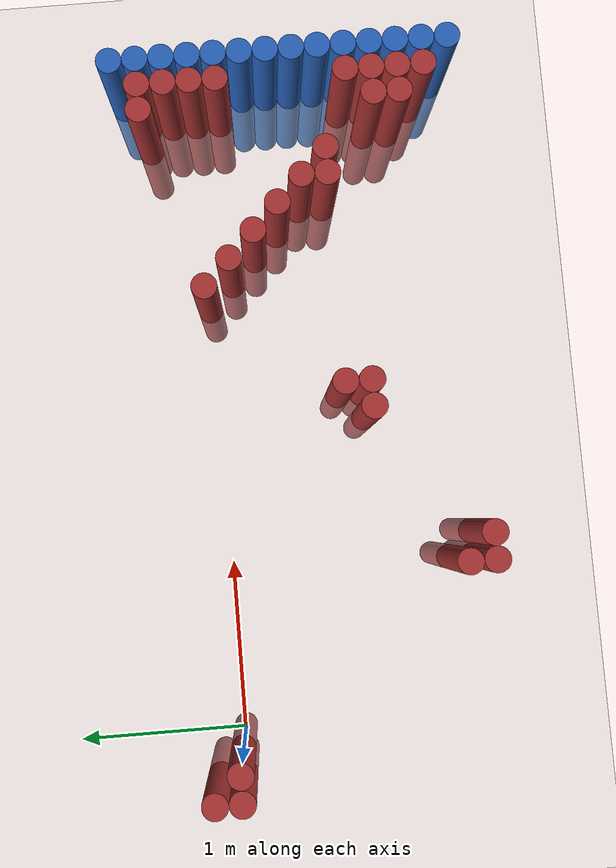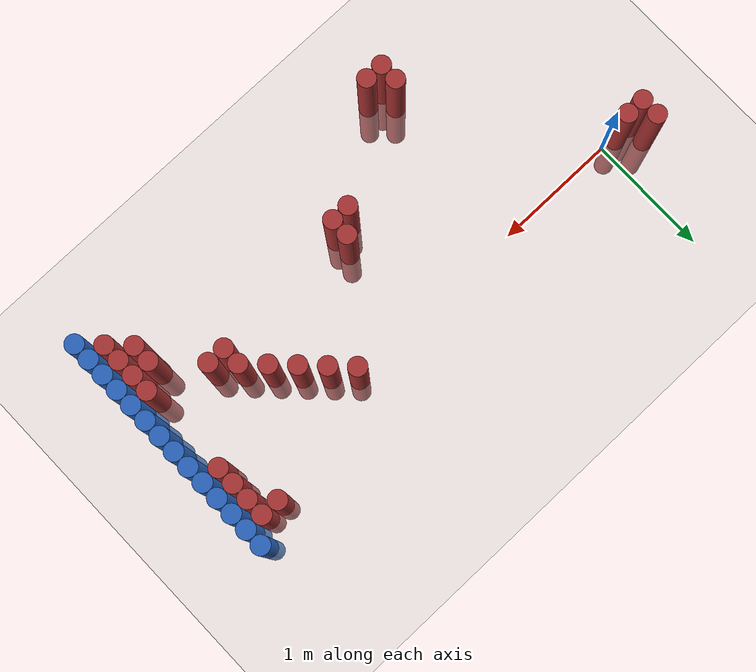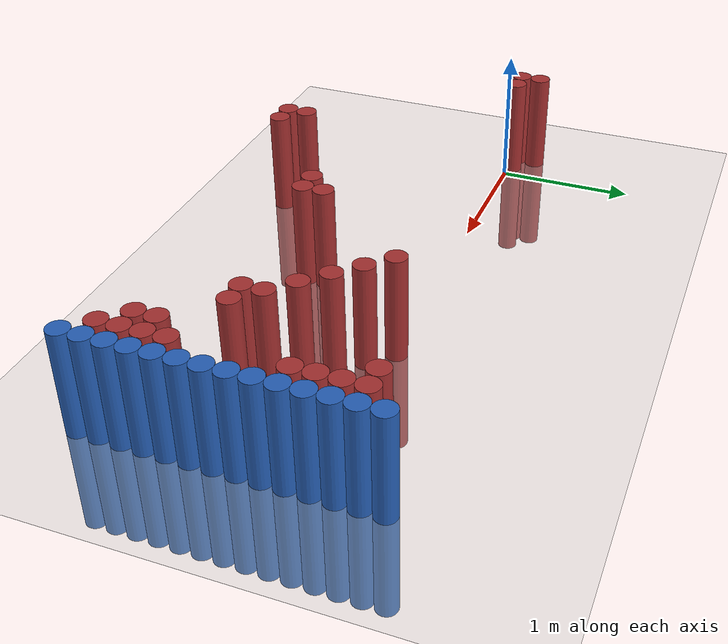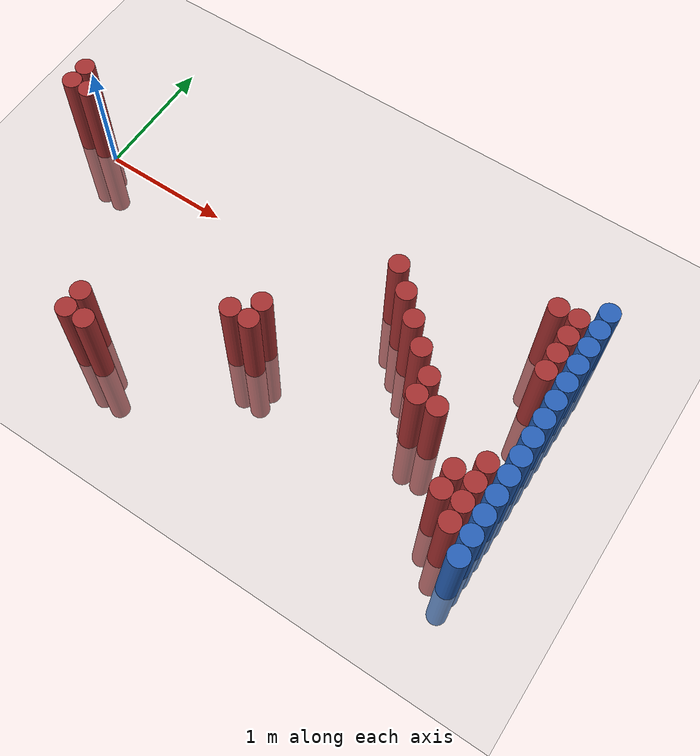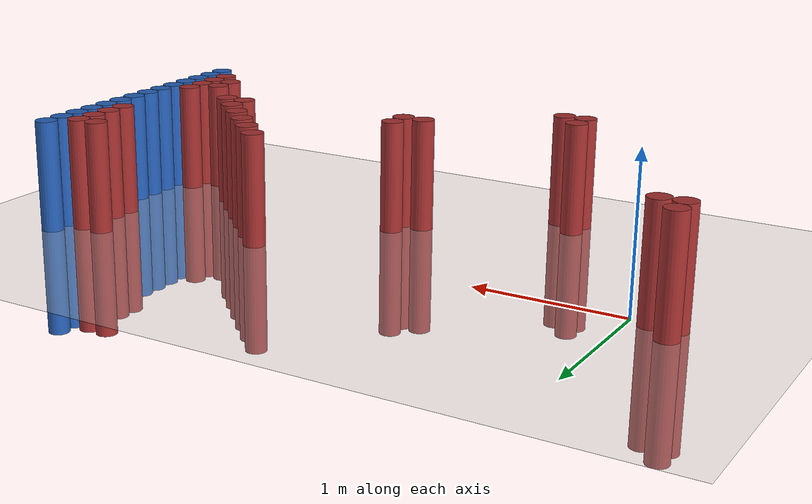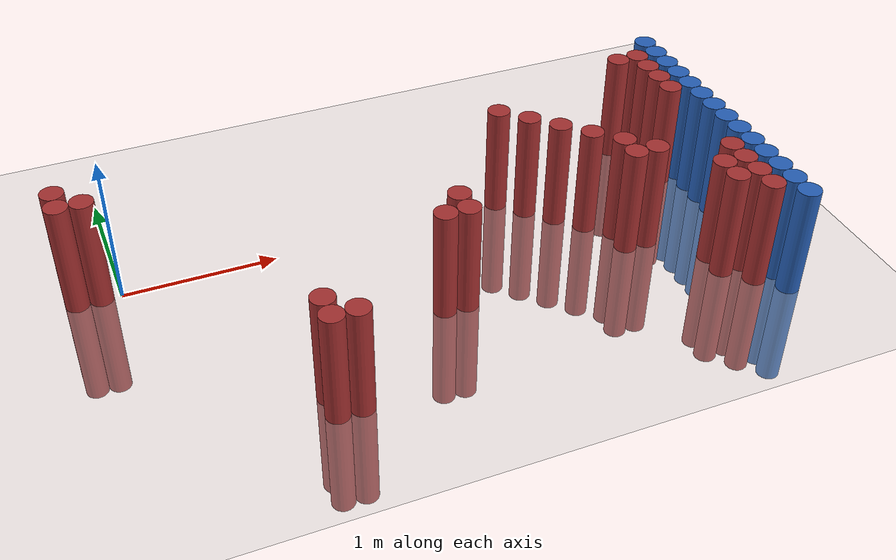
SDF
<sdf version="1.6">
 <world name="default">
  <model name="ground_plane">
   <static>1</static>
   <link name="link">
    <collision name="collision">
     <geometry><plane><normal>0 0 1</normal><size>100 100</size></plane></geometry>
     <surface><friction><ode><mu>100</mu><mu2>50</mu2></ode></friction></surface>
    </collision>
    <visual name="visual">
     <cast_shadows>0</cast_shadows>
     <geometry><plane><normal>0 0 1</normal><size>100 100</size></plane></geometry>
     <material>
      <script><uri>file://media/materials/scripts/gazebo.material</uri><name>Gazebo/Grey</name></script>
     </material>
    </visual>
   </link>
  </model>
  <model name="unit_cylinder_94">
   <static>1</static>
   <pose>3.925000 -1.475000 0.000000 0.000000 0.000000 0.000000</pose>
   <link name="link">
    <inertial>
     <mass>1</mass>
     <inertia><ixx>0.145833</ixx><ixy>0</ixy><ixz>0</ixz><iyy>0.145833</iyy><iyz>0</iyz><izz>0.125</izz></inertia>
    </inertial>
    <collision name="collision">
     <geometry><cylinder><radius>0.075000</radius><length>1.5</length></cylinder></geometry>
    </collision>
    <visual name="visual">
     <geometry><cylinder><radius>0.075000</radius><length>1.5</length></cylinder></geometry>
     <material>
      <ambient>0.152000 0.379000 0.720000 1</ambient>
      <diffuse>0.152000 0.379000 0.720000 1</diffuse>
     </material>
     <material>
      <script><name>Gazebo/Grey</name><uri>file://media/materials/scripts/gazebo.material</uri></script>
     </material>
    </visual>
   </link>
  </model>
  <model name="unit_cylinder_96">
   <static>1</static>
   <pose>3.925000 -1.325000 0.000000 0.000000 0.000000 0.000000</pose>
   <link name="link">
    <inertial>
     <mass>1</mass>
     <inertia><ixx>0.145833</ixx><ixy>0</ixy><ixz>0</ixz><iyy>0.145833</iyy><iyz>0</iyz><izz>0.125</izz></inertia>
    </inertial>
    <collision name="collision">
     <geometry><cylinder><radius>0.075000</radius><length>1.5</length></cylinder></geometry>
    </collision>
    <visual name="visual">
     <geometry><cylinder><radius>0.075000</radius><length>1.5</length></cylinder></geometry>
     <material>
      <ambient>0.152000 0.379000 0.720000 1</ambient>
      <diffuse>0.152000 0.379000 0.720000 1</diffuse>
     </material>
     <material>
      <script><name>Gazebo/Grey</name><uri>file://media/materials/scripts/gazebo.material</uri></script>
     </material>
    </visual>
   </link>
  </model>
  <model name="unit_cylinder_98">
   <static>1</static>
   <pose>3.925000 -1.175000 0.000000 0.000000 0.000000 0.000000</pose>
   <link name="link">
    <inertial>
     <mass>1</mass>
     <inertia><ixx>0.145833</ixx><ixy>0</ixy><ixz>0</ixz><iyy>0.145833</iyy><iyz>0</iyz><izz>0.125</izz></inertia>
    </inertial>
    <collision name="collision">
     <geometry><cylinder><radius>0.075000</radius><length>1.5</length></cylinder></geometry>
    </collision>
    <visual name="visual">
     <geometry><cylinder><radius>0.075000</radius><length>1.5</length></cylinder></geometry>
     <material>
      <ambient>0.152000 0.379000 0.720000 1</ambient>
      <diffuse>0.152000 0.379000 0.720000 1</diffuse>
     </material>
     <material>
      <script><name>Gazebo/Grey</name><uri>file://media/materials/scripts/gazebo.material</uri></script>
     </material>
    </visual>
   </link>
  </model>
  <model name="unit_cylinder_100">
   <static>1</static>
   <pose>3.925000 -1.025000 0.000000 0.000000 0.000000 0.000000</pose>
   <link name="link">
    <inertial>
     <mass>1</mass>
     <inertia><ixx>0.145833</ixx><ixy>0</ixy><ixz>0</ixz><iyy>0.145833</iyy><iyz>0</iyz><izz>0.125</izz></inertia>
    </inertial>
    <collision name="collision">
     <geometry><cylinder><radius>0.075000</radius><length>1.5</length></cylinder></geometry>
    </collision>
    <visual name="visual">
     <geometry><cylinder><radius>0.075000</radius><length>1.5</length></cylinder></geometry>
     <material>
      <ambient>0.152000 0.379000 0.720000 1</ambient>
      <diffuse>0.152000 0.379000 0.720000 1</diffuse>
     </material>
     <material>
      <script><name>Gazebo/Grey</name><uri>file://media/materials/scripts/gazebo.material</uri></script>
     </material>
    </visual>
   </link>
  </model>
  <model name="unit_cylinder_102">
   <static>1</static>
   <pose>3.925000 -0.875000 0.000000 0.000000 0.000000 0.000000</pose>
   <link name="link">
    <inertial>
     <mass>1</mass>
     <inertia><ixx>0.145833</ixx><ixy>0</ixy><ixz>0</ixz><iyy>0.145833</iyy><iyz>0</iyz><izz>0.125</izz></inertia>
    </inertial>
    <collision name="collision">
     <geometry><cylinder><radius>0.075000</radius><length>1.5</length></cylinder></geometry>
    </collision>
    <visual name="visual">
     <geometry><cylinder><radius>0.075000</radius><length>1.5</length></cylinder></geometry>
     <material>
      <ambient>0.152000 0.379000 0.720000 1</ambient>
      <diffuse>0.152000 0.379000 0.720000 1</diffuse>
     </material>
     <material>
      <script><name>Gazebo/Grey</name><uri>file://media/materials/scripts/gazebo.material</uri></script>
     </material>
    </visual>
   </link>
  </model>
  <model name="unit_cylinder_104">
   <static>1</static>
   <pose>3.925000 -0.725000 0.000000 0.000000 0.000000 0.000000</pose>
   <link name="link">
    <inertial>
     <mass>1</mass>
     <inertia><ixx>0.145833</ixx><ixy>0</ixy><ixz>0</ixz><iyy>0.145833</iyy><iyz>0</iyz><izz>0.125</izz></inertia>
    </inertial>
    <collision name="collision">
     <geometry><cylinder><radius>0.075000</radius><length>1.5</length></cylinder></geometry>
    </collision>
    <visual name="visual">
     <geometry><cylinder><radius>0.075000</radius><length>1.5</length></cylinder></geometry>
     <material>
      <ambient>0.152000 0.379000 0.720000 1</ambient>
      <diffuse>0.152000 0.379000 0.720000 1</diffuse>
     </material>
     <material>
      <script><name>Gazebo/Grey</name><uri>file://media/materials/scripts/gazebo.material</uri></script>
     </material>
    </visual>
   </link>
  </model>
  <model name="unit_cylinder_106">
   <static>1</static>
   <pose>3.925000 -0.575000 0.000000 0.000000 0.000000 0.000000</pose>
   <link name="link">
    <inertial>
     <mass>1</mass>
     <inertia><ixx>0.145833</ixx><ixy>0</ixy><ixz>0</ixz><iyy>0.145833</iyy><iyz>0</iyz><izz>0.125</izz></inertia>
    </inertial>
    <collision name="collision">
     <geometry><cylinder><radius>0.075000</radius><length>1.5</length></cylinder></geometry>
    </collision>
    <visual name="visual">
     <geometry><cylinder><radius>0.075000</radius><length>1.5</length></cylinder></geometry>
     <material>
      <ambient>0.152000 0.379000 0.720000 1</ambient>
      <diffuse>0.152000 0.379000 0.720000 1</diffuse>
     </material>
     <material>
      <script><name>Gazebo/Grey</name><uri>file://media/materials/scripts/gazebo.material</uri></script>
     </material>
    </visual>
   </link>
  </model>
  <model name="unit_cylinder_108">
   <static>1</static>
   <pose>3.925000 -0.425000 0.000000 0.000000 0.000000 0.000000</pose>
   <link name="link">
    <inertial>
     <mass>1</mass>
     <inertia><ixx>0.145833</ixx><ixy>0</ixy><ixz>0</ixz><iyy>0.145833</iyy><iyz>0</iyz><izz>0.125</izz></inertia>
    </inertial>
    <collision name="collision">
     <geometry><cylinder><radius>0.075000</radius><length>1.5</length></cylinder></geometry>
    </collision>
    <visual name="visual">
     <geometry><cylinder><radius>0.075000</radius><length>1.5</length></cylinder></geometry>
     <material>
      <ambient>0.152000 0.379000 0.720000 1</ambient>
      <diffuse>0.152000 0.379000 0.720000 1</diffuse>
     </material>
     <material>
      <script><name>Gazebo/Grey</name><uri>file://media/materials/scripts/gazebo.material</uri></script>
     </material>
    </visual>
   </link>
  </model>
  <model name="unit_cylinder_110">
   <static>1</static>
   <pose>3.925000 -0.275000 0.000000 0.000000 0.000000 0.000000</pose>
   <link name="link">
    <inertial>
     <mass>1</mass>
     <inertia><ixx>0.145833</ixx><ixy>0</ixy><ixz>0</ixz><iyy>0.145833</iyy><iyz>0</iyz><izz>0.125</izz></inertia>
    </inertial>
    <collision name="collision">
     <geometry><cylinder><radius>0.075000</radius><length>1.5</length></cylinder></geometry>
    </collision>
    <visual name="visual">
     <geometry><cylinder><radius>0.075000</radius><length>1.5</length></cylinder></geometry>
     <material>
      <ambient>0.152000 0.379000 0.720000 1</ambient>
      <diffuse>0.152000 0.379000 0.720000 1</diffuse>
     </material>
     <material>
      <script><name>Gazebo/Grey</name><uri>file://media/materials/scripts/gazebo.material</uri></script>
     </material>
    </visual>
   </link>
  </model>
  <model name="unit_cylinder_112">
   <static>1</static>
   <pose>3.925000 -0.125000 0.000000 0.000000 0.000000 0.000000</pose>
   <link name="link">
    <inertial>
     <mass>1</mass>
     <inertia><ixx>0.145833</ixx><ixy>0</ixy><ixz>0</ixz><iyy>0.145833</iyy><iyz>0</iyz><izz>0.125</izz></inertia>
    </inertial>
    <collision name="collision">
     <geometry><cylinder><radius>0.075000</radius><length>1.5</length></cylinder></geometry>
    </collision>
    <visual name="visual">
     <geometry><cylinder><radius>0.075000</radius><length>1.5</length></cylinder></geometry>
     <material>
      <ambient>0.152000 0.379000 0.720000 1</ambient>
      <diffuse>0.152000 0.379000 0.720000 1</diffuse>
     </material>
     <material>
      <script><name>Gazebo/Grey</name><uri>file://media/materials/scripts/gazebo.material</uri></script>
     </material>
    </visual>
   </link>
  </model>
  <model name="unit_cylinder_114">
   <static>1</static>
   <pose>3.925000 0.025000 0.000000 0.000000 0.000000 0.000000</pose>
   <link name="link">
    <inertial>
     <mass>1</mass>
     <inertia><ixx>0.145833</ixx><ixy>0</ixy><ixz>0</ixz><iyy>0.145833</iyy><iyz>0</iyz><izz>0.125</izz></inertia>
    </inertial>
    <collision name="collision">
     <geometry><cylinder><radius>0.075000</radius><length>1.5</length></cylinder></geometry>
    </collision>
    <visual name="visual">
     <geometry><cylinder><radius>0.075000</radius><length>1.5</length></cylinder></geometry>
     <material>
      <ambient>0.152000 0.379000 0.720000 1</ambient>
      <diffuse>0.152000 0.379000 0.720000 1</diffuse>
     </material>
     <material>
      <script><name>Gazebo/Grey</name><uri>file://media/materials/scripts/gazebo.material</uri></script>
     </material>
    </visual>
   </link>
  </model>
  <model name="unit_cylinder_116">
   <static>1</static>
   <pose>3.925000 0.175000 0.000000 0.000000 0.000000 0.000000</pose>
   <link name="link">
    <inertial>
     <mass>1</mass>
     <inertia><ixx>0.145833</ixx><ixy>0</ixy><ixz>0</ixz><iyy>0.145833</iyy><iyz>0</iyz><izz>0.125</izz></inertia>
    </inertial>
    <collision name="collision">
     <geometry><cylinder><radius>0.075000</radius><length>1.5</length></cylinder></geometry>
    </collision>
    <visual name="visual">
     <geometry><cylinder><radius>0.075000</radius><length>1.5</length></cylinder></geometry>
     <material>
      <ambient>0.152000 0.379000 0.720000 1</ambient>
      <diffuse>0.152000 0.379000 0.720000 1</diffuse>
     </material>
     <material>
      <script><name>Gazebo/Grey</name><uri>file://media/materials/scripts/gazebo.material</uri></script>
     </material>
    </visual>
   </link>
  </model>
  <model name="unit_cylinder_118">
   <static>1</static>
   <pose>3.925000 0.325000 0.000000 0.000000 0.000000 0.000000</pose>
   <link name="link">
    <inertial>
     <mass>1</mass>
     <inertia><ixx>0.145833</ixx><ixy>0</ixy><ixz>0</ixz><iyy>0.145833</iyy><iyz>0</iyz><izz>0.125</izz></inertia>
    </inertial>
    <collision name="collision">
     <geometry><cylinder><radius>0.075000</radius><length>1.5</length></cylinder></geometry>
    </collision>
    <visual name="visual">
     <geometry><cylinder><radius>0.075000</radius><length>1.5</length></cylinder></geometry>
     <material>
      <ambient>0.152000 0.379000 0.720000 1</ambient>
      <diffuse>0.152000 0.379000 0.720000 1</diffuse>
     </material>
     <material>
      <script><name>Gazebo/Grey</name><uri>file://media/materials/scripts/gazebo.material</uri></script>
     </material>
    </visual>
   </link>
  </model>
  <model name="unit_cylinder_120">
   <static>1</static>
   <pose>3.925000 0.475000 0.000000 0.000000 0.000000 0.000000</pose>
   <link name="link">
    <inertial>
     <mass>1</mass>
     <inertia><ixx>0.145833</ixx><ixy>0</ixy><ixz>0</ixz><iyy>0.145833</iyy><iyz>0</iyz><izz>0.125</izz></inertia>
    </inertial>
    <collision name="collision">
     <geometry><cylinder><radius>0.075000</radius><length>1.5</length></cylinder></geometry>
    </collision>
    <visual name="visual">
     <geometry><cylinder><radius>0.075000</radius><length>1.5</length></cylinder></geometry>
     <material>
      <ambient>0.152000 0.379000 0.720000 1</ambient>
      <diffuse>0.152000 0.379000 0.720000 1</diffuse>
     </material>
     <material>
      <script><name>Gazebo/Grey</name><uri>file://media/materials/scripts/gazebo.material</uri></script>
     </material>
    </visual>
   </link>
  </model>
  <model name="unit_cylinder_320">
   <static>1</static>
   <pose>-0.275000 0.025000 0.000000 0.000000 0.000000 0.000000</pose>
   <link name="link">
    <inertial>
     <mass>1</mass>
     <inertia><ixx>0.145833</ixx><ixy>0</ixy><ixz>0</ixz><iyy>0.145833</iyy><iyz>0</iyz><izz>0.125</izz></inertia>
    </inertial>
    <collision name="collision">
     <geometry><cylinder><radius>0.075000</radius><length>1.5</length></cylinder></geometry>
    </collision>
    <visual name="visual">
     <geometry><cylinder><radius>0.075000</radius><length>1.5</length></cylinder></geometry>
     <material>
      <ambient>0.648000 0.192000 0.192000 1</ambient>
      <diffuse>0.648000 0.192000 0.192000 1</diffuse>
     </material>
     <material>
      <script><name>Gazebo/Grey</name><uri>file://media/materials/scripts/gazebo.material</uri></script>
     </material>
    </visual>
   </link>
  </model>
  <model name="unit_cylinder_321">
   <static>1</static>
   <pose>-0.275000 0.175000 0.000000 0.000000 0.000000 0.000000</pose>
   <link name="link">
    <inertial>
     <mass>1</mass>
     <inertia><ixx>0.145833</ixx><ixy>0</ixy><ixz>0</ixz><iyy>0.145833</iyy><iyz>0</iyz><izz>0.125</izz></inertia>
    </inertial>
    <collision name="collision">
     <geometry><cylinder><radius>0.075000</radius><length>1.5</length></cylinder></geometry>
    </collision>
    <visual name="visual">
     <geometry><cylinder><radius>0.075000</radius><length>1.5</length></cylinder></geometry>
     <material>
      <ambient>0.648000 0.192000 0.192000 1</ambient>
      <diffuse>0.648000 0.192000 0.192000 1</diffuse>
     </material>
     <material>
      <script><name>Gazebo/Grey</name><uri>file://media/materials/scripts/gazebo.material</uri></script>
     </material>
    </visual>
   </link>
  </model>
  <model name="unit_cylinder_322">
   <static>1</static>
   <pose>-0.125000 0.025000 0.000000 0.000000 0.000000 0.000000</pose>
   <link name="link">
    <inertial>
     <mass>1</mass>
     <inertia><ixx>0.145833</ixx><ixy>0</ixy><ixz>0</ixz><iyy>0.145833</iyy><iyz>0</iyz><izz>0.125</izz></inertia>
    </inertial>
    <collision name="collision">
     <geometry><cylinder><radius>0.075000</radius><length>1.5</length></cylinder></geometry>
    </collision>
    <visual name="visual">
     <geometry><cylinder><radius>0.075000</radius><length>1.5</length></cylinder></geometry>
     <material>
      <ambient>0.648000 0.192000 0.192000 1</ambient>
      <diffuse>0.648000 0.192000 0.192000 1</diffuse>
     </material>
     <material>
      <script><name>Gazebo/Grey</name><uri>file://media/materials/scripts/gazebo.material</uri></script>
     </material>
    </visual>
   </link>
  </model>
  <model name="unit_cylinder_343">
   <static>1</static>
   <pose>0.925000 -1.475000 0.000000 0.000000 0.000000 0.000000</pose>
   <link name="link">
    <inertial>
     <mass>1</mass>
     <inertia><ixx>0.145833</ixx><ixy>0</ixy><ixz>0</ixz><iyy>0.145833</iyy><iyz>0</iyz><izz>0.125</izz></inertia>
    </inertial>
    <collision name="collision">
     <geometry><cylinder><radius>0.075000</radius><length>1.5</length></cylinder></geometry>
    </collision>
    <visual name="visual">
     <geometry><cylinder><radius>0.075000</radius><length>1.5</length></cylinder></geometry>
     <material>
      <ambient>0.648000 0.192000 0.192000 1</ambient>
      <diffuse>0.648000 0.192000 0.192000 1</diffuse>
     </material>
     <material>
      <script><name>Gazebo/Grey</name><uri>file://media/materials/scripts/gazebo.material</uri></script>
     </material>
    </visual>
   </link>
  </model>
  <model name="unit_cylinder_344">
   <static>1</static>
   <pose>0.925000 -1.325000 0.000000 0.000000 0.000000 0.000000</pose>
   <link name="link">
    <inertial>
     <mass>1</mass>
     <inertia><ixx>0.145833</ixx><ixy>0</ixy><ixz>0</ixz><iyy>0.145833</iyy><iyz>0</iyz><izz>0.125</izz></inertia>
    </inertial>
    <collision name="collision">
     <geometry><cylinder><radius>0.075000</radius><length>1.5</length></cylinder></geometry>
    </collision>
    <visual name="visual">
     <geometry><cylinder><radius>0.075000</radius><length>1.5</length></cylinder></geometry>
     <material>
      <ambient>0.648000 0.192000 0.192000 1</ambient>
      <diffuse>0.648000 0.192000 0.192000 1</diffuse>
     </material>
     <material>
      <script><name>Gazebo/Grey</name><uri>file://media/materials/scripts/gazebo.material</uri></script>
     </material>
    </visual>
   </link>
  </model>
  <model name="unit_cylinder_349">
   <static>1</static>
   <pose>1.075000 -1.475000 0.000000 0.000000 0.000000 0.000000</pose>
   <link name="link">
    <inertial>
     <mass>1</mass>
     <inertia><ixx>0.145833</ixx><ixy>0</ixy><ixz>0</ixz><iyy>0.145833</iyy><iyz>0</iyz><izz>0.125</izz></inertia>
    </inertial>
    <collision name="collision">
     <geometry><cylinder><radius>0.075000</radius><length>1.5</length></cylinder></geometry>
    </collision>
    <visual name="visual">
     <geometry><cylinder><radius>0.075000</radius><length>1.5</length></cylinder></geometry>
     <material>
      <ambient>0.648000 0.192000 0.192000 1</ambient>
      <diffuse>0.648000 0.192000 0.192000 1</diffuse>
     </material>
     <material>
      <script><name>Gazebo/Grey</name><uri>file://media/materials/scripts/gazebo.material</uri></script>
     </material>
    </visual>
   </link>
  </model>
  <model name="unit_cylinder_371">
   <static>1</static>
   <pose>1.825000 -0.875000 0.000000 0.000000 0.000000 0.000000</pose>
   <link name="link">
    <inertial>
     <mass>1</mass>
     <inertia><ixx>0.145833</ixx><ixy>0</ixy><ixz>0</ixz><iyy>0.145833</iyy><iyz>0</iyz><izz>0.125</izz></inertia>
    </inertial>
    <collision name="collision">
     <geometry><cylinder><radius>0.075000</radius><length>1.5</length></cylinder></geometry>
    </collision>
    <visual name="visual">
     <geometry><cylinder><radius>0.075000</radius><length>1.5</length></cylinder></geometry>
     <material>
      <ambient>0.648000 0.192000 0.192000 1</ambient>
      <diffuse>0.648000 0.192000 0.192000 1</diffuse>
     </material>
     <material>
      <script><name>Gazebo/Grey</name><uri>file://media/materials/scripts/gazebo.material</uri></script>
     </material>
    </visual>
   </link>
  </model>
  <model name="unit_cylinder_374">
   <static>1</static>
   <pose>1.975000 -0.875000 0.000000 0.000000 0.000000 0.000000</pose>
   <link name="link">
    <inertial>
     <mass>1</mass>
     <inertia><ixx>0.145833</ixx><ixy>0</ixy><ixz>0</ixz><iyy>0.145833</iyy><iyz>0</iyz><izz>0.125</izz></inertia>
    </inertial>
    <collision name="collision">
     <geometry><cylinder><radius>0.075000</radius><length>1.5</length></cylinder></geometry>
    </collision>
    <visual name="visual">
     <geometry><cylinder><radius>0.075000</radius><length>1.5</length></cylinder></geometry>
     <material>
      <ambient>0.648000 0.192000 0.192000 1</ambient>
      <diffuse>0.648000 0.192000 0.192000 1</diffuse>
     </material>
     <material>
      <script><name>Gazebo/Grey</name><uri>file://media/materials/scripts/gazebo.material</uri></script>
     </material>
    </visual>
   </link>
  </model>
  <model name="unit_cylinder_375">
   <static>1</static>
   <pose>1.975000 -0.725000 0.000000 0.000000 0.000000 0.000000</pose>
   <link name="link">
    <inertial>
     <mass>1</mass>
     <inertia><ixx>0.145833</ixx><ixy>0</ixy><ixz>0</ixz><iyy>0.145833</iyy><iyz>0</iyz><izz>0.125</izz></inertia>
    </inertial>
    <collision name="collision">
     <geometry><cylinder><radius>0.075000</radius><length>1.5</length></cylinder></geometry>
    </collision>
    <visual name="visual">
     <geometry><cylinder><radius>0.075000</radius><length>1.5</length></cylinder></geometry>
     <material>
      <ambient>0.648000 0.192000 0.192000 1</ambient>
      <diffuse>0.648000 0.192000 0.192000 1</diffuse>
     </material>
     <material>
      <script><name>Gazebo/Grey</name><uri>file://media/materials/scripts/gazebo.material</uri></script>
     </material>
    </visual>
   </link>
  </model>
  <model name="unit_cylinder_382">
   <static>1</static>
   <pose>2.575000 0.025000 0.000000 0.000000 0.000000 0.000000</pose>
   <link name="link">
    <inertial>
     <mass>1</mass>
     <inertia><ixx>0.145833</ixx><ixy>0</ixy><ixz>0</ixz><iyy>0.145833</iyy><iyz>0</iyz><izz>0.125</izz></inertia>
    </inertial>
    <collision name="collision">
     <geometry><cylinder><radius>0.075000</radius><length>1.5</length></cylinder></geometry>
    </collision>
    <visual name="visual">
     <geometry><cylinder><radius>0.075000</radius><length>1.5</length></cylinder></geometry>
     <material>
      <ambient>0.648000 0.192000 0.192000 1</ambient>
      <diffuse>0.648000 0.192000 0.192000 1</diffuse>
     </material>
     <material>
      <script><name>Gazebo/Grey</name><uri>file://media/materials/scripts/gazebo.material</uri></script>
     </material>
    </visual>
   </link>
  </model>
  <model name="unit_cylinder_387">
   <static>1</static>
   <pose>2.725000 -0.125000 0.000000 0.000000 0.000000 0.000000</pose>
   <link name="link">
    <inertial>
     <mass>1</mass>
     <inertia><ixx>0.145833</ixx><ixy>0</ixy><ixz>0</ixz><iyy>0.145833</iyy><iyz>0</iyz><izz>0.125</izz></inertia>
    </inertial>
    <collision name="collision">
     <geometry><cylinder><radius>0.075000</radius><length>1.5</length></cylinder></geometry>
    </collision>
    <visual name="visual">
     <geometry><cylinder><radius>0.075000</radius><length>1.5</length></cylinder></geometry>
     <material>
      <ambient>0.648000 0.192000 0.192000 1</ambient>
      <diffuse>0.648000 0.192000 0.192000 1</diffuse>
     </material>
     <material>
      <script><name>Gazebo/Grey</name><uri>file://media/materials/scripts/gazebo.material</uri></script>
     </material>
    </visual>
   </link>
  </model>
  <model name="unit_cylinder_388">
   <static>1</static>
   <pose>2.875000 -0.275000 0.000000 0.000000 0.000000 0.000000</pose>
   <link name="link">
    <inertial>
     <mass>1</mass>
     <inertia><ixx>0.145833</ixx><ixy>0</ixy><ixz>0</ixz><iyy>0.145833</iyy><iyz>0</iyz><izz>0.125</izz></inertia>
    </inertial>
    <collision name="collision">
     <geometry><cylinder><radius>0.075000</radius><length>1.5</length></cylinder></geometry>
    </collision>
    <visual name="visual">
     <geometry><cylinder><radius>0.075000</radius><length>1.5</length></cylinder></geometry>
     <material>
      <ambient>0.648000 0.192000 0.192000 1</ambient>
      <diffuse>0.648000 0.192000 0.192000 1</diffuse>
     </material>
     <material>
      <script><name>Gazebo/Grey</name><uri>file://media/materials/scripts/gazebo.material</uri></script>
     </material>
    </visual>
   </link>
  </model>
  <model name="unit_cylinder_389">
   <static>1</static>
   <pose>3.025000 -0.425000 0.000000 0.000000 0.000000 0.000000</pose>
   <link name="link">
    <inertial>
     <mass>1</mass>
     <inertia><ixx>0.145833</ixx><ixy>0</ixy><ixz>0</ixz><iyy>0.145833</iyy><iyz>0</iyz><izz>0.125</izz></inertia>
    </inertial>
    <collision name="collision">
     <geometry><cylinder><radius>0.075000</radius><length>1.5</length></cylinder></geometry>
    </collision>
    <visual name="visual">
     <geometry><cylinder><radius>0.075000</radius><length>1.5</length></cylinder></geometry>
     <material>
      <ambient>0.648000 0.192000 0.192000 1</ambient>
      <diffuse>0.648000 0.192000 0.192000 1</diffuse>
     </material>
     <material>
      <script><name>Gazebo/Grey</name><uri>file://media/materials/scripts/gazebo.material</uri></script>
     </material>
    </visual>
   </link>
  </model>
  <model name="unit_cylinder_390">
   <static>1</static>
   <pose>3.175000 -0.725000 0.000000 0.000000 0.000000 0.000000</pose>
   <link name="link">
    <inertial>
     <mass>1</mass>
     <inertia><ixx>0.145833</ixx><ixy>0</ixy><ixz>0</ixz><iyy>0.145833</iyy><iyz>0</iyz><izz>0.125</izz></inertia>
    </inertial>
    <collision name="collision">
     <geometry><cylinder><radius>0.075000</radius><length>1.5</length></cylinder></geometry>
    </collision>
    <visual name="visual">
     <geometry><cylinder><radius>0.075000</radius><length>1.5</length></cylinder></geometry>
     <material>
      <ambient>0.648000 0.192000 0.192000 1</ambient>
      <diffuse>0.648000 0.192000 0.192000 1</diffuse>
     </material>
     <material>
      <script><name>Gazebo/Grey</name><uri>file://media/materials/scripts/gazebo.material</uri></script>
     </material>
    </visual>
   </link>
  </model>
  <model name="unit_cylinder_391">
   <static>1</static>
   <pose>3.175000 -0.575000 0.000000 0.000000 0.000000 0.000000</pose>
   <link name="link">
    <inertial>
     <mass>1</mass>
     <inertia><ixx>0.145833</ixx><ixy>0</ixy><ixz>0</ixz><iyy>0.145833</iyy><iyz>0</iyz><izz>0.125</izz></inertia>
    </inertial>
    <collision name="collision">
     <geometry><cylinder><radius>0.075000</radius><length>1.5</length></cylinder></geometry>
    </collision>
    <visual name="visual">
     <geometry><cylinder><radius>0.075000</radius><length>1.5</length></cylinder></geometry>
     <material>
      <ambient>0.648000 0.192000 0.192000 1</ambient>
      <diffuse>0.648000 0.192000 0.192000 1</diffuse>
     </material>
     <material>
      <script><name>Gazebo/Grey</name><uri>file://media/materials/scripts/gazebo.material</uri></script>
     </material>
    </visual>
   </link>
  </model>
  <model name="unit_cylinder_395">
   <static>1</static>
   <pose>3.325000 -0.725000 0.000000 0.000000 0.000000 0.000000</pose>
   <link name="link">
    <inertial>
     <mass>1</mass>
     <inertia><ixx>0.145833</ixx><ixy>0</ixy><ixz>0</ixz><iyy>0.145833</iyy><iyz>0</iyz><izz>0.125</izz></inertia>
    </inertial>
    <collision name="collision">
     <geometry><cylinder><radius>0.075000</radius><length>1.5</length></cylinder></geometry>
    </collision>
    <visual name="visual">
     <geometry><cylinder><radius>0.075000</radius><length>1.5</length></cylinder></geometry>
     <material>
      <ambient>0.648000 0.192000 0.192000 1</ambient>
      <diffuse>0.648000 0.192000 0.192000 1</diffuse>
     </material>
     <material>
      <script><name>Gazebo/Grey</name><uri>file://media/materials/scripts/gazebo.material</uri></script>
     </material>
    </visual>
   </link>
  </model>
  <model name="unit_cylinder_408">
   <static>1</static>
   <pose>3.625000 -1.175000 0.000000 0.000000 0.000000 0.000000</pose>
   <link name="link">
    <inertial>
     <mass>1</mass>
     <inertia><ixx>0.145833</ixx><ixy>0</ixy><ixz>0</ixz><iyy>0.145833</iyy><iyz>0</iyz><izz>0.125</izz></inertia>
    </inertial>
    <collision name="collision">
     <geometry><cylinder><radius>0.075000</radius><length>1.5</length></cylinder></geometry>
    </collision>
    <visual name="visual">
     <geometry><cylinder><radius>0.075000</radius><length>1.5</length></cylinder></geometry>
     <material>
      <ambient>0.648000 0.192000 0.192000 1</ambient>
      <diffuse>0.648000 0.192000 0.192000 1</diffuse>
     </material>
     <material>
      <script><name>Gazebo/Grey</name><uri>file://media/materials/scripts/gazebo.material</uri></script>
     </material>
    </visual>
   </link>
  </model>
  <model name="unit_cylinder_409">
   <static>1</static>
   <pose>3.625000 -1.025000 0.000000 0.000000 0.000000 0.000000</pose>
   <link name="link">
    <inertial>
     <mass>1</mass>
     <inertia><ixx>0.145833</ixx><ixy>0</ixy><ixz>0</ixz><iyy>0.145833</iyy><iyz>0</iyz><izz>0.125</izz></inertia>
    </inertial>
    <collision name="collision">
     <geometry><cylinder><radius>0.075000</radius><length>1.5</length></cylinder></geometry>
    </collision>
    <visual name="visual">
     <geometry><cylinder><radius>0.075000</radius><length>1.5</length></cylinder></geometry>
     <material>
      <ambient>0.648000 0.192000 0.192000 1</ambient>
      <diffuse>0.648000 0.192000 0.192000 1</diffuse>
     </material>
     <material>
      <script><name>Gazebo/Grey</name><uri>file://media/materials/scripts/gazebo.material</uri></script>
     </material>
    </visual>
   </link>
  </model>
  <model name="unit_cylinder_410">
   <static>1</static>
   <pose>3.625000 0.325000 0.000000 0.000000 0.000000 0.000000</pose>
   <link name="link">
    <inertial>
     <mass>1</mass>
     <inertia><ixx>0.145833</ixx><ixy>0</ixy><ixz>0</ixz><iyy>0.145833</iyy><iyz>0</iyz><izz>0.125</izz></inertia>
    </inertial>
    <collision name="collision">
     <geometry><cylinder><radius>0.075000</radius><length>1.5</length></cylinder></geometry>
    </collision>
    <visual name="visual">
     <geometry><cylinder><radius>0.075000</radius><length>1.5</length></cylinder></geometry>
     <material>
      <ambient>0.648000 0.192000 0.192000 1</ambient>
      <diffuse>0.648000 0.192000 0.192000 1</diffuse>
     </material>
     <material>
      <script><name>Gazebo/Grey</name><uri>file://media/materials/scripts/gazebo.material</uri></script>
     </material>
    </visual>
   </link>
  </model>
  <model name="unit_cylinder_418">
   <static>1</static>
   <pose>3.775000 -1.325000 0.000000 0.000000 0.000000 0.000000</pose>
   <link name="link">
    <inertial>
     <mass>1</mass>
     <inertia><ixx>0.145833</ixx><ixy>0</ixy><ixz>0</ixz><iyy>0.145833</iyy><iyz>0</iyz><izz>0.125</izz></inertia>
    </inertial>
    <collision name="collision">
     <geometry><cylinder><radius>0.075000</radius><length>1.5</length></cylinder></geometry>
    </collision>
    <visual name="visual">
     <geometry><cylinder><radius>0.075000</radius><length>1.5</length></cylinder></geometry>
     <material>
      <ambient>0.648000 0.192000 0.192000 1</ambient>
      <diffuse>0.648000 0.192000 0.192000 1</diffuse>
     </material>
     <material>
      <script><name>Gazebo/Grey</name><uri>file://media/materials/scripts/gazebo.material</uri></script>
     </material>
    </visual>
   </link>
  </model>
  <model name="unit_cylinder_419">
   <static>1</static>
   <pose>3.775000 -1.175000 0.000000 0.000000 0.000000 0.000000</pose>
   <link name="link">
    <inertial>
     <mass>1</mass>
     <inertia><ixx>0.145833</ixx><ixy>0</ixy><ixz>0</ixz><iyy>0.145833</iyy><iyz>0</iyz><izz>0.125</izz></inertia>
    </inertial>
    <collision name="collision">
     <geometry><cylinder><radius>0.075000</radius><length>1.5</length></cylinder></geometry>
    </collision>
    <visual name="visual">
     <geometry><cylinder><radius>0.075000</radius><length>1.5</length></cylinder></geometry>
     <material>
      <ambient>0.648000 0.192000 0.192000 1</ambient>
      <diffuse>0.648000 0.192000 0.192000 1</diffuse>
     </material>
     <material>
      <script><name>Gazebo/Grey</name><uri>file://media/materials/scripts/gazebo.material</uri></script>
     </material>
    </visual>
   </link>
  </model>
  <model name="unit_cylinder_420">
   <static>1</static>
   <pose>3.775000 -1.025000 0.000000 0.000000 0.000000 0.000000</pose>
   <link name="link">
    <inertial>
     <mass>1</mass>
     <inertia><ixx>0.145833</ixx><ixy>0</ixy><ixz>0</ixz><iyy>0.145833</iyy><iyz>0</iyz><izz>0.125</izz></inertia>
    </inertial>
    <collision name="collision">
     <geometry><cylinder><radius>0.075000</radius><length>1.5</length></cylinder></geometry>
    </collision>
    <visual name="visual">
     <geometry><cylinder><radius>0.075000</radius><length>1.5</length></cylinder></geometry>
     <material>
      <ambient>0.648000 0.192000 0.192000 1</ambient>
      <diffuse>0.648000 0.192000 0.192000 1</diffuse>
     </material>
     <material>
      <script><name>Gazebo/Grey</name><uri>file://media/materials/scripts/gazebo.material</uri></script>
     </material>
    </visual>
   </link>
  </model>
  <model name="unit_cylinder_421">
   <static>1</static>
   <pose>3.775000 -0.875000 0.000000 0.000000 0.000000 0.000000</pose>
   <link name="link">
    <inertial>
     <mass>1</mass>
     <inertia><ixx>0.145833</ixx><ixy>0</ixy><ixz>0</ixz><iyy>0.145833</iyy><iyz>0</iyz><izz>0.125</izz></inertia>
    </inertial>
    <collision name="collision">
     <geometry><cylinder><radius>0.075000</radius><length>1.5</length></cylinder></geometry>
    </collision>
    <visual name="visual">
     <geometry><cylinder><radius>0.075000</radius><length>1.5</length></cylinder></geometry>
     <material>
      <ambient>0.648000 0.192000 0.192000 1</ambient>
      <diffuse>0.648000 0.192000 0.192000 1</diffuse>
     </material>
     <material>
      <script><name>Gazebo/Grey</name><uri>file://media/materials/scripts/gazebo.material</uri></script>
     </material>
    </visual>
   </link>
  </model>
  <model name="unit_cylinder_422">
   <static>1</static>
   <pose>3.775000 -0.125000 0.000000 0.000000 0.000000 0.000000</pose>
   <link name="link">
    <inertial>
     <mass>1</mass>
     <inertia><ixx>0.145833</ixx><ixy>0</ixy><ixz>0</ixz><iyy>0.145833</iyy><iyz>0</iyz><izz>0.125</izz></inertia>
    </inertial>
    <collision name="collision">
     <geometry><cylinder><radius>0.075000</radius><length>1.5</length></cylinder></geometry>
    </collision>
    <visual name="visual">
     <geometry><cylinder><radius>0.075000</radius><length>1.5</length></cylinder></geometry>
     <material>
      <ambient>0.648000 0.192000 0.192000 1</ambient>
      <diffuse>0.648000 0.192000 0.192000 1</diffuse>
     </material>
     <material>
      <script><name>Gazebo/Grey</name><uri>file://media/materials/scripts/gazebo.material</uri></script>
     </material>
    </visual>
   </link>
  </model>
  <model name="unit_cylinder_423">
   <static>1</static>
   <pose>3.775000 0.025000 0.000000 0.000000 0.000000 0.000000</pose>
   <link name="link">
    <inertial>
     <mass>1</mass>
     <inertia><ixx>0.145833</ixx><ixy>0</ixy><ixz>0</ixz><iyy>0.145833</iyy><iyz>0</iyz><izz>0.125</izz></inertia>
    </inertial>
    <collision name="collision">
     <geometry><cylinder><radius>0.075000</radius><length>1.5</length></cylinder></geometry>
    </collision>
    <visual name="visual">
     <geometry><cylinder><radius>0.075000</radius><length>1.5</length></cylinder></geometry>
     <material>
      <ambient>0.648000 0.192000 0.192000 1</ambient>
      <diffuse>0.648000 0.192000 0.192000 1</diffuse>
     </material>
     <material>
      <script><name>Gazebo/Grey</name><uri>file://media/materials/scripts/gazebo.material</uri></script>
     </material>
    </visual>
   </link>
  </model>
  <model name="unit_cylinder_424">
   <static>1</static>
   <pose>3.775000 0.175000 0.000000 0.000000 0.000000 0.000000</pose>
   <link name="link">
    <inertial>
     <mass>1</mass>
     <inertia><ixx>0.145833</ixx><ixy>0</ixy><ixz>0</ixz><iyy>0.145833</iyy><iyz>0</iyz><izz>0.125</izz></inertia>
    </inertial>
    <collision name="collision">
     <geometry><cylinder><radius>0.075000</radius><length>1.5</length></cylinder></geometry>
    </collision>
    <visual name="visual">
     <geometry><cylinder><radius>0.075000</radius><length>1.5</length></cylinder></geometry>
     <material>
      <ambient>0.648000 0.192000 0.192000 1</ambient>
      <diffuse>0.648000 0.192000 0.192000 1</diffuse>
     </material>
     <material>
      <script><name>Gazebo/Grey</name><uri>file://media/materials/scripts/gazebo.material</uri></script>
     </material>
    </visual>
   </link>
  </model>
  <model name="unit_cylinder_425">
   <static>1</static>
   <pose>3.775000 0.325000 0.000000 0.000000 0.000000 0.000000</pose>
   <link name="link">
    <inertial>
     <mass>1</mass>
     <inertia><ixx>0.145833</ixx><ixy>0</ixy><ixz>0</ixz><iyy>0.145833</iyy><iyz>0</iyz><izz>0.125</izz></inertia>
    </inertial>
    <collision name="collision">
     <geometry><cylinder><radius>0.075000</radius><length>1.5</length></cylinder></geometry>
    </collision>
    <visual name="visual">
     <geometry><cylinder><radius>0.075000</radius><length>1.5</length></cylinder></geometry>
     <material>
      <ambient>0.648000 0.192000 0.192000 1</ambient>
      <diffuse>0.648000 0.192000 0.192000 1</diffuse>
     </material>
     <material>
      <script><name>Gazebo/Grey</name><uri>file://media/materials/scripts/gazebo.material</uri></script>
     </material>
    </visual>
   </link>
  </model>
  <model name="unit_cylinder_440">
   <static>1</static>
   <pose>3.925000 -1.475000 0.000000 0.000000 0.000000 0.000000</pose>
   <link name="link">
    <inertial>
     <mass>1</mass>
     <inertia><ixx>0.145833</ixx><ixy>0</ixy><ixz>0</ixz><iyy>0.145833</iyy><iyz>0</iyz><izz>0.125</izz></inertia>
    </inertial>
    <collision name="collision">
     <geometry><cylinder><radius>0.075000</radius><length>1.5</length></cylinder></geometry>
    </collision>
    <visual name="visual">
     <geometry><cylinder><radius>0.075000</radius><length>1.5</length></cylinder></geometry>
     <material>
      <ambient>0.152000 0.379000 0.720000 1</ambient>
      <diffuse>0.152000 0.379000 0.720000 1</diffuse>
     </material>
     <material>
      <script><name>Gazebo/Grey</name><uri>file://media/materials/scripts/gazebo.material</uri></script>
     </material>
    </visual>
   </link>
  </model>
  <model name="unit_cylinder_441">
   <static>1</static>
   <pose>3.925000 -1.325000 0.000000 0.000000 0.000000 0.000000</pose>
   <link name="link">
    <inertial>
     <mass>1</mass>
     <inertia><ixx>0.145833</ixx><ixy>0</ixy><ixz>0</ixz><iyy>0.145833</iyy><iyz>0</iyz><izz>0.125</izz></inertia>
    </inertial>
    <collision name="collision">
     <geometry><cylinder><radius>0.075000</radius><length>1.5</length></cylinder></geometry>
    </collision>
    <visual name="visual">
     <geometry><cylinder><radius>0.075000</radius><length>1.5</length></cylinder></geometry>
     <material>
      <ambient>0.152000 0.379000 0.720000 1</ambient>
      <diffuse>0.152000 0.379000 0.720000 1</diffuse>
     </material>
     <material>
      <script><name>Gazebo/Grey</name><uri>file://media/materials/scripts/gazebo.material</uri></script>
     </material>
    </visual>
   </link>
  </model>
  <model name="unit_cylinder_442">
   <static>1</static>
   <pose>3.925000 -1.175000 0.000000 0.000000 0.000000 0.000000</pose>
   <link name="link">
    <inertial>
     <mass>1</mass>
     <inertia><ixx>0.145833</ixx><ixy>0</ixy><ixz>0</ixz><iyy>0.145833</iyy><iyz>0</iyz><izz>0.125</izz></inertia>
    </inertial>
    <collision name="collision">
     <geometry><cylinder><radius>0.075000</radius><length>1.5</length></cylinder></geometry>
    </collision>
    <visual name="visual">
     <geometry><cylinder><radius>0.075000</radius><length>1.5</length></cylinder></geometry>
     <material>
      <ambient>0.152000 0.379000 0.720000 1</ambient>
      <diffuse>0.152000 0.379000 0.720000 1</diffuse>
     </material>
     <material>
      <script><name>Gazebo/Grey</name><uri>file://media/materials/scripts/gazebo.material</uri></script>
     </material>
    </visual>
   </link>
  </model>
  <model name="unit_cylinder_443">
   <static>1</static>
   <pose>3.925000 -1.025000 0.000000 0.000000 0.000000 0.000000</pose>
   <link name="link">
    <inertial>
     <mass>1</mass>
     <inertia><ixx>0.145833</ixx><ixy>0</ixy><ixz>0</ixz><iyy>0.145833</iyy><iyz>0</iyz><izz>0.125</izz></inertia>
    </inertial>
    <collision name="collision">
     <geometry><cylinder><radius>0.075000</radius><length>1.5</length></cylinder></geometry>
    </collision>
    <visual name="visual">
     <geometry><cylinder><radius>0.075000</radius><length>1.5</length></cylinder></geometry>
     <material>
      <ambient>0.152000 0.379000 0.720000 1</ambient>
      <diffuse>0.152000 0.379000 0.720000 1</diffuse>
     </material>
     <material>
      <script><name>Gazebo/Grey</name><uri>file://media/materials/scripts/gazebo.material</uri></script>
     </material>
    </visual>
   </link>
  </model>
  <model name="unit_cylinder_444">
   <static>1</static>
   <pose>3.925000 -0.875000 0.000000 0.000000 0.000000 0.000000</pose>
   <link name="link">
    <inertial>
     <mass>1</mass>
     <inertia><ixx>0.145833</ixx><ixy>0</ixy><ixz>0</ixz><iyy>0.145833</iyy><iyz>0</iyz><izz>0.125</izz></inertia>
    </inertial>
    <collision name="collision">
     <geometry><cylinder><radius>0.075000</radius><length>1.5</length></cylinder></geometry>
    </collision>
    <visual name="visual">
     <geometry><cylinder><radius>0.075000</radius><length>1.5</length></cylinder></geometry>
     <material>
      <ambient>0.152000 0.379000 0.720000 1</ambient>
      <diffuse>0.152000 0.379000 0.720000 1</diffuse>
     </material>
     <material>
      <script><name>Gazebo/Grey</name><uri>file://media/materials/scripts/gazebo.material</uri></script>
     </material>
    </visual>
   </link>
  </model>
  <model name="unit_cylinder_445">
   <static>1</static>
   <pose>3.925000 -0.725000 0.000000 0.000000 0.000000 0.000000</pose>
   <link name="link">
    <inertial>
     <mass>1</mass>
     <inertia><ixx>0.145833</ixx><ixy>0</ixy><ixz>0</ixz><iyy>0.145833</iyy><iyz>0</iyz><izz>0.125</izz></inertia>
    </inertial>
    <collision name="collision">
     <geometry><cylinder><radius>0.075000</radius><length>1.5</length></cylinder></geometry>
    </collision>
    <visual name="visual">
     <geometry><cylinder><radius>0.075000</radius><length>1.5</length></cylinder></geometry>
     <material>
      <ambient>0.152000 0.379000 0.720000 1</ambient>
      <diffuse>0.152000 0.379000 0.720000 1</diffuse>
     </material>
     <material>
      <script><name>Gazebo/Grey</name><uri>file://media/materials/scripts/gazebo.material</uri></script>
     </material>
    </visual>
   </link>
  </model>
  <model name="unit_cylinder_446">
   <static>1</static>
   <pose>3.925000 -0.575000 0.000000 0.000000 0.000000 0.000000</pose>
   <link name="link">
    <inertial>
     <mass>1</mass>
     <inertia><ixx>0.145833</ixx><ixy>0</ixy><ixz>0</ixz><iyy>0.145833</iyy><iyz>0</iyz><izz>0.125</izz></inertia>
    </inertial>
    <collision name="collision">
     <geometry><cylinder><radius>0.075000</radius><length>1.5</length></cylinder></geometry>
    </collision>
    <visual name="visual">
     <geometry><cylinder><radius>0.075000</radius><length>1.5</length></cylinder></geometry>
     <material>
      <ambient>0.152000 0.379000 0.720000 1</ambient>
      <diffuse>0.152000 0.379000 0.720000 1</diffuse>
     </material>
     <material>
      <script><name>Gazebo/Grey</name><uri>file://media/materials/scripts/gazebo.material</uri></script>
     </material>
    </visual>
   </link>
  </model>
  <model name="unit_cylinder_447">
   <static>1</static>
   <pose>3.925000 -0.425000 0.000000 0.000000 0.000000 0.000000</pose>
   <link name="link">
    <inertial>
     <mass>1</mass>
     <inertia><ixx>0.145833</ixx><ixy>0</ixy><ixz>0</ixz><iyy>0.145833</iyy><iyz>0</iyz><izz>0.125</izz></inertia>
    </inertial>
    <collision name="collision">
     <geometry><cylinder><radius>0.075000</radius><length>1.5</length></cylinder></geometry>
    </collision>
    <visual name="visual">
     <geometry><cylinder><radius>0.075000</radius><length>1.5</length></cylinder></geometry>
     <material>
      <ambient>0.152000 0.379000 0.720000 1</ambient>
      <diffuse>0.152000 0.379000 0.720000 1</diffuse>
     </material>
     <material>
      <script><name>Gazebo/Grey</name><uri>file://media/materials/scripts/gazebo.material</uri></script>
     </material>
    </visual>
   </link>
  </model>
  <model name="unit_cylinder_448">
   <static>1</static>
   <pose>3.925000 -0.275000 0.000000 0.000000 0.000000 0.000000</pose>
   <link name="link">
    <inertial>
     <mass>1</mass>
     <inertia><ixx>0.145833</ixx><ixy>0</ixy><ixz>0</ixz><iyy>0.145833</iyy><iyz>0</iyz><izz>0.125</izz></inertia>
    </inertial>
    <collision name="collision">
     <geometry><cylinder><radius>0.075000</radius><length>1.5</length></cylinder></geometry>
    </collision>
    <visual name="visual">
     <geometry><cylinder><radius>0.075000</radius><length>1.5</length></cylinder></geometry>
     <material>
      <ambient>0.152000 0.379000 0.720000 1</ambient>
      <diffuse>0.152000 0.379000 0.720000 1</diffuse>
     </material>
     <material>
      <script><name>Gazebo/Grey</name><uri>file://media/materials/scripts/gazebo.material</uri></script>
     </material>
    </visual>
   </link>
  </model>
  <model name="unit_cylinder_449">
   <static>1</static>
   <pose>3.925000 -0.125000 0.000000 0.000000 0.000000 0.000000</pose>
   <link name="link">
    <inertial>
     <mass>1</mass>
     <inertia><ixx>0.145833</ixx><ixy>0</ixy><ixz>0</ixz><iyy>0.145833</iyy><iyz>0</iyz><izz>0.125</izz></inertia>
    </inertial>
    <collision name="collision">
     <geometry><cylinder><radius>0.075000</radius><length>1.5</length></cylinder></geometry>
    </collision>
    <visual name="visual">
     <geometry><cylinder><radius>0.075000</radius><length>1.5</length></cylinder></geometry>
     <material>
      <ambient>0.152000 0.379000 0.720000 1</ambient>
      <diffuse>0.152000 0.379000 0.720000 1</diffuse>
     </material>
     <material>
      <script><name>Gazebo/Grey</name><uri>file://media/materials/scripts/gazebo.material</uri></script>
     </material>
    </visual>
   </link>
  </model>
  <model name="unit_cylinder_450">
   <static>1</static>
   <pose>3.925000 0.025000 0.000000 0.000000 0.000000 0.000000</pose>
   <link name="link">
    <inertial>
     <mass>1</mass>
     <inertia><ixx>0.145833</ixx><ixy>0</ixy><ixz>0</ixz><iyy>0.145833</iyy><iyz>0</iyz><izz>0.125</izz></inertia>
    </inertial>
    <collision name="collision">
     <geometry><cylinder><radius>0.075000</radius><length>1.5</length></cylinder></geometry>
    </collision>
    <visual name="visual">
     <geometry><cylinder><radius>0.075000</radius><length>1.5</length></cylinder></geometry>
     <material>
      <ambient>0.152000 0.379000 0.720000 1</ambient>
      <diffuse>0.152000 0.379000 0.720000 1</diffuse>
     </material>
     <material>
      <script><name>Gazebo/Grey</name><uri>file://media/materials/scripts/gazebo.material</uri></script>
     </material>
    </visual>
   </link>
  </model>
  <model name="unit_cylinder_451">
   <static>1</static>
   <pose>3.925000 0.175000 0.000000 0.000000 0.000000 0.000000</pose>
   <link name="link">
    <inertial>
     <mass>1</mass>
     <inertia><ixx>0.145833</ixx><ixy>0</ixy><ixz>0</ixz><iyy>0.145833</iyy><iyz>0</iyz><izz>0.125</izz></inertia>
    </inertial>
    <collision name="collision">
     <geometry><cylinder><radius>0.075000</radius><length>1.5</length></cylinder></geometry>
    </collision>
    <visual name="visual">
     <geometry><cylinder><radius>0.075000</radius><length>1.5</length></cylinder></geometry>
     <material>
      <ambient>0.152000 0.379000 0.720000 1</ambient>
      <diffuse>0.152000 0.379000 0.720000 1</diffuse>
     </material>
     <material>
      <script><name>Gazebo/Grey</name><uri>file://media/materials/scripts/gazebo.material</uri></script>
     </material>
    </visual>
   </link>
  </model>
  <model name="unit_cylinder_452">
   <static>1</static>
   <pose>3.925000 0.325000 0.000000 0.000000 0.000000 0.000000</pose>
   <link name="link">
    <inertial>
     <mass>1</mass>
     <inertia><ixx>0.145833</ixx><ixy>0</ixy><ixz>0</ixz><iyy>0.145833</iyy><iyz>0</iyz><izz>0.125</izz></inertia>
    </inertial>
    <collision name="collision">
     <geometry><cylinder><radius>0.075000</radius><length>1.5</length></cylinder></geometry>
    </collision>
    <visual name="visual">
     <geometry><cylinder><radius>0.075000</radius><length>1.5</length></cylinder></geometry>
     <material>
      <ambient>0.152000 0.379000 0.720000 1</ambient>
      <diffuse>0.152000 0.379000 0.720000 1</diffuse>
     </material>
     <material>
      <script><name>Gazebo/Grey</name><uri>file://media/materials/scripts/gazebo.material</uri></script>
     </material>
    </visual>
   </link>
  </model>
 </world>
</sdf>
